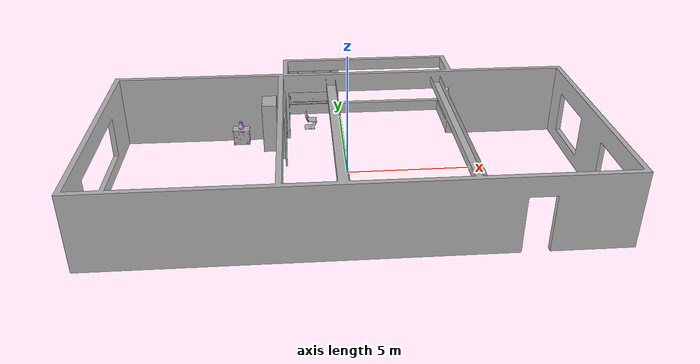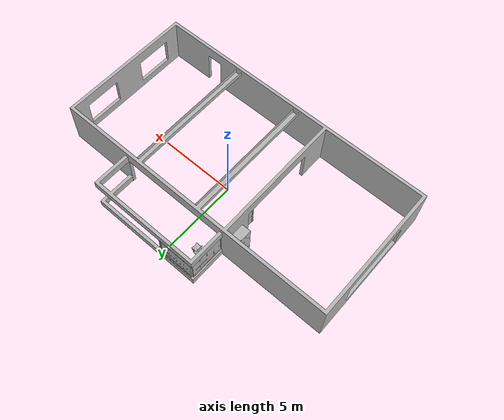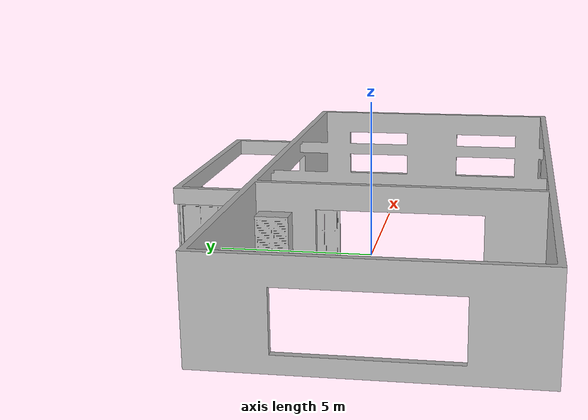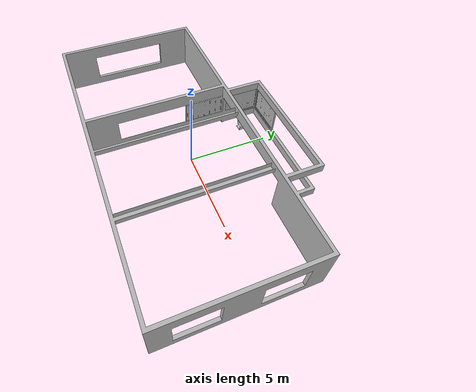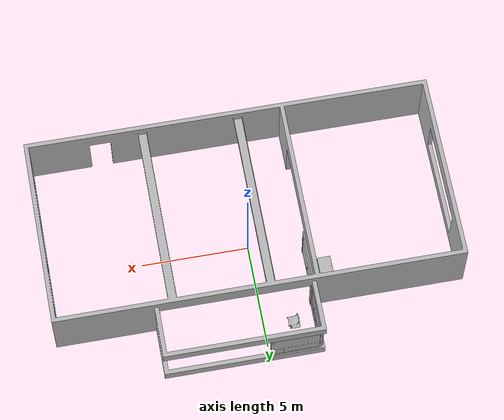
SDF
<sdf version="1.6">
 <world name="default">
  <model name="NightStand_01_002">
   <static>1</static>
   <link name="aws_robomaker_residential_NightStand_01::link">
    <inertial>
     <mass>13.6</mass>
     <inertia><ixx>0.6165</ixx><ixy>0</ixy><ixz>0</ixz><iyy>1.29664</iyy><iyz>0</iyz><izz>0.7706</izz></inertia>
    </inertial>
    <collision name="collision">
     <geometry>
      <mesh>
       <uri>model://aws_robomaker_residential_NightStand_01/meshes/aws_NightStand_01_collision.DAE</uri>
       <scale>1 1 1</scale>
      </mesh>
     </geometry>
    </collision>
    <visual name="visual">
     <geometry>
      <mesh><uri>model://aws_robomaker_residential_NightStand_01/meshes/aws_NightStand_01_visual.DAE</uri></mesh>
     </geometry>
     <meta><layer>1</layer></meta>
    </visual>
   </link>
   <static>1</static>
   <pose>-4.40734 2.86042 0.005256 0 2e-06 0</pose>
  </model>
  <model name="ChairD_01_001">
   <static>1</static>
   <link name="aws_robomaker_residential_ChairD_01::link">
    <inertial>
     <mass>4.5</mass>
     <inertia><ixy>0</ixy><ixz>0</ixz><iyz>0</iyz><ixx>0.217</ixx><iyy>0.217</iyy><izz>0.067</izz></inertia>
    </inertial>
    <collision name="collision">
     <geometry>
      <mesh>
       <uri>model://aws_robomaker_residential_ChairD_01/meshes/aws_ChairD_01_collision.DAE</uri>
       <scale>1 1 1</scale>
      </mesh>
     </geometry>
    </collision>
    <visual name="visual">
     <geometry>
      <mesh><uri>model://aws_robomaker_residential_ChairD_01/meshes/aws_ChairD_01_visual.DAE</uri></mesh>
     </geometry>
     <meta><layer>1</layer></meta>
    </visual>
   </link>
   <pose>-1.38078 4.10446 0 0 -0 0</pose>
  </model>
  <model name="FoldingDoor_01_001">
   <static>1</static>
   <link name="aws_robomaker_residential_FoldingDoor_01::link">
    <inertial><mass>1</mass></inertial>
    <collision name="collision">
     <geometry>
      <mesh>
       <uri>model://aws_robomaker_residential_FoldingDoor_01/meshes/aws_FoldingDoor_01_collision.DAE</uri>
       <scale>1 1 1</scale>
      </mesh>
     </geometry>
    </collision>
    <visual name="visual">
     <geometry>
      <mesh><uri>model://aws_robomaker_residential_FoldingDoor_01/meshes/aws_FoldingDoor_01_visual.DAE</uri></mesh>
     </geometry>
     <meta><layer>2</layer></meta>
    </visual>
   </link>
   <static>1</static>
   <pose>-2.4611 1.84422 0.041881 0 -0 0</pose>
  </model>
  <model name="HouseWallB_01_001">
   <static>1</static>
   <link name="aws_robomaker_residential_HouseWallB_01::link">
    <inertial><mass>1</mass></inertial>
    <collision name="collision">
     <geometry>
      <mesh>
       <uri>model://aws_robomaker_residential_HouseWallB_01/meshes/aws_HouseWallB_01_collision.DAE</uri>
       <scale>1 1 1</scale>
      </mesh>
     </geometry>
    </collision>
    <visual name="visual">
     <geometry>
      <mesh><uri>model://aws_robomaker_residential_HouseWallB_01/meshes/aws_HouseWallB_01_visual.DAE</uri></mesh>
     </geometry>
     <meta><layer>2</layer></meta>
    </visual>
   </link>
   <static>1</static>
  </model>
  <model name="Wardrobe_01_001">
   <static>1</static>
   <link name="aws_robomaker_residential_Wardrobe_01::link">
    <inertial><mass>51.7</mass></inertial>
    <collision name="collision">
     <geometry>
      <mesh>
       <uri>model://aws_robomaker_residential_Wardrobe_01/meshes/aws_Wardrobe_01_collision.DAE</uri>
       <scale>1 1 1</scale>
      </mesh>
     </geometry>
    </collision>
    <visual name="visual">
     <geometry>
      <mesh><uri>model://aws_robomaker_residential_Wardrobe_01/meshes/aws_Wardrobe_01_visual.DAE</uri></mesh>
     </geometry>
     <meta><layer>1</layer></meta>
    </visual>
   </link>
   <static>1</static>
   <pose>-3.14671 2.4762 0.000704 0 0 -1.56967</pose>
  </model>
  <model name="RoomWindow_01_008">
   <static>1</static>
   <link name="aws_robomaker_residential_RoomWindow_01::link">
    <inertial><mass>1</mass></inertial>
    <collision name="collision">
     <geometry>
      <mesh>
       <uri>model://aws_robomaker_residential_RoomWindow_01/meshes/aws_RoomWindow_01_collision.DAE</uri>
       <scale>1 1 1</scale>
      </mesh>
     </geometry>
    </collision>
    <visual name="visual">
     <geometry>
      <mesh><uri>model://aws_robomaker_residential_RoomWindow_01/meshes/aws_RoomWindow_01_visual.DAE</uri></mesh>
     </geometry>
     <meta><layer>2</layer></meta>
    </visual>
   </link>
   <static>1</static>
   <pose>-1.19934 5.60069 0.502739 0 0 -1.56627</pose>
  </model>
  <model name="RoomWindow_01_009">
   <static>1</static>
   <link name="aws_robomaker_residential_RoomWindow_01::link">
    <inertial><mass>1</mass></inertial>
    <collision name="collision">
     <geometry>
      <mesh>
       <uri>model://aws_robomaker_residential_RoomWindow_01/meshes/aws_RoomWindow_01_collision.DAE</uri>
       <scale>1 1 1</scale>
      </mesh>
     </geometry>
    </collision>
    <visual name="visual">
     <geometry>
      <mesh><uri>model://aws_robomaker_residential_RoomWindow_01/meshes/aws_RoomWindow_01_visual.DAE</uri></mesh>
     </geometry>
     <meta><layer>2</layer></meta>
    </visual>
   </link>
   <static>1</static>
   <pose>-2.39662 4.38761 0.502739 0 -0 0</pose>
  </model>
  <model name="vase_violet">
   <link name="link_34">
    <pose>0 0 -0.149567 0 -0 0</pose>
    <visual name="visual">
     <geometry><mesh><uri>model://vase_violet/meshes/vase5.dae</uri><scale>1 1 1</scale></mesh></geometry>
     <material>
      <lighting>1</lighting>
      <ambient>0.788 0.525 0.972 1</ambient>
      <diffuse>0.788 0.525 0.972 1</diffuse>
      <specular>0.01 0.01 0.01 1</specular>
      <emissive>0 0 0 1</emissive>
      <shader type="vertex"><normal_map>__default__</normal_map></shader>
     </material>
    </visual>
    <collision name="collision">
     <geometry><mesh><uri>model://vase_violet/meshes/vase5.dae</uri><scale>1 1 1</scale></mesh></geometry>
    </collision>
   </link>
   <static>1</static>
   <pose>-4.4 2.8 0.7 0 -0 0</pose>
  </model>
 </world>
</sdf>
